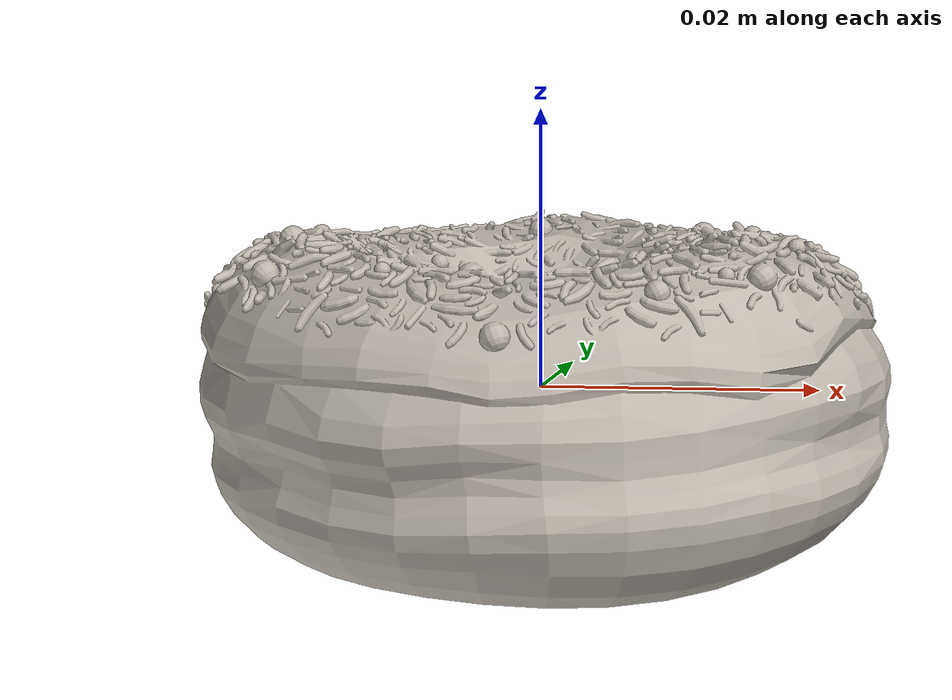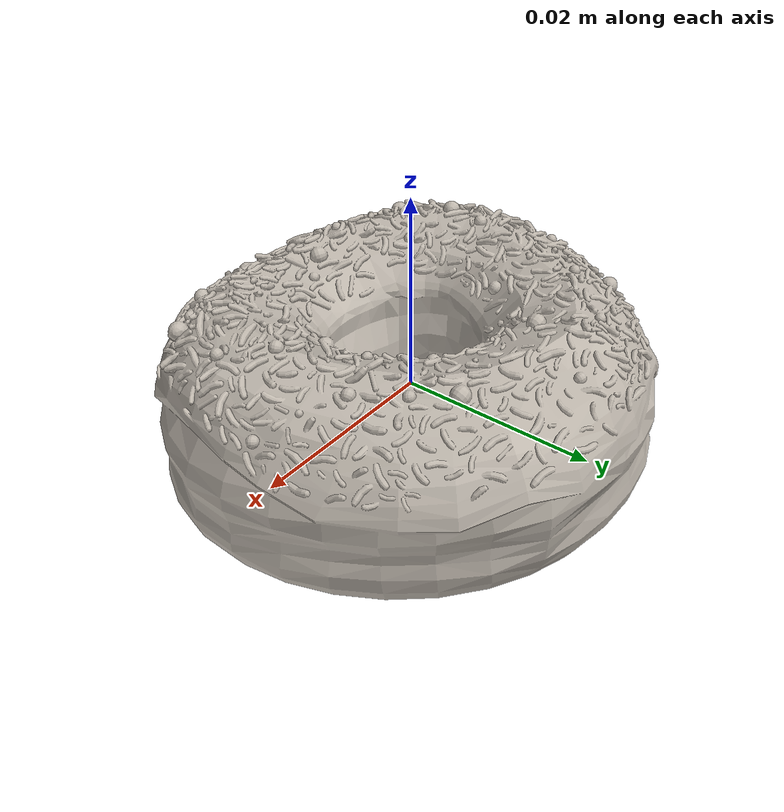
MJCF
<mujoco model="mandarin_3">
  <asset>
    <mesh file="visual/model_normalized_0.obj" name="model_normalized_0_vis" scale="0.05 0.05 0.05" refquat="1.0 0.0 0.0 0.0" />
    <mesh file="collision/model_normalized_collision_22.obj" name="model_normalized_collision_22._coll" scale="0.05 0.05 0.05" refquat="1.0 0.0 0.0 0.0" />
    <mesh file="collision/model_normalized_collision_23.obj" name="model_normalized_collision_23._coll" scale="0.05 0.05 0.05" refquat="1.0 0.0 0.0 0.0" />
    <mesh file="collision/model_normalized_collision_21.obj" name="model_normalized_collision_21._coll" scale="0.05 0.05 0.05" refquat="1.0 0.0 0.0 0.0" />
    <mesh file="collision/model_normalized_collision_20.obj" name="model_normalized_collision_20._coll" scale="0.05 0.05 0.05" refquat="1.0 0.0 0.0 0.0" />
    <mesh file="collision/model_normalized_collision_24.obj" name="model_normalized_collision_24._coll" scale="0.05 0.05 0.05" refquat="1.0 0.0 0.0 0.0" />
    <mesh file="collision/model_normalized_collision_30.obj" name="model_normalized_collision_30._coll" scale="0.05 0.05 0.05" refquat="1.0 0.0 0.0 0.0" />
    <mesh file="collision/model_normalized_collision_18.obj" name="model_normalized_collision_18._coll" scale="0.05 0.05 0.05" refquat="1.0 0.0 0.0 0.0" />
    <mesh file="collision/model_normalized_collision_19.obj" name="model_normalized_collision_19._coll" scale="0.05 0.05 0.05" refquat="1.0 0.0 0.0 0.0" />
    <mesh file="collision/model_normalized_collision_31.obj" name="model_normalized_collision_31._coll" scale="0.05 0.05 0.05" refquat="1.0 0.0 0.0 0.0" />
    <mesh file="collision/model_normalized_collision_25.obj" name="model_normalized_collision_25._coll" scale="0.05 0.05 0.05" refquat="1.0 0.0 0.0 0.0" />
    <mesh file="collision/model_normalized_collision_27.obj" name="model_normalized_collision_27._coll" scale="0.05 0.05 0.05" refquat="1.0 0.0 0.0 0.0" />
    <mesh file="collision/model_normalized_collision_26.obj" name="model_normalized_collision_26._coll" scale="0.05 0.05 0.05" refquat="1.0 0.0 0.0 0.0" />
    <mesh file="collision/model_normalized_collision_9.obj" name="model_normalized_collision_9._coll" scale="0.05 0.05 0.05" refquat="1.0 0.0 0.0 0.0" />
    <mesh file="collision/model_normalized_collision_8.obj" name="model_normalized_collision_8._coll" scale="0.05 0.05 0.05" refquat="1.0 0.0 0.0 0.0" />
    <mesh file="collision/model_normalized_collision_6.obj" name="model_normalized_collision_6._coll" scale="0.05 0.05 0.05" refquat="1.0 0.0 0.0 0.0" />
    <mesh file="collision/model_normalized_collision_7.obj" name="model_normalized_collision_7._coll" scale="0.05 0.05 0.05" refquat="1.0 0.0 0.0 0.0" />
    <mesh file="collision/model_normalized_collision_5.obj" name="model_normalized_collision_5._coll" scale="0.05 0.05 0.05" refquat="1.0 0.0 0.0 0.0" />
    <mesh file="collision/model_normalized_collision_4.obj" name="model_normalized_collision_4._coll" scale="0.05 0.05 0.05" refquat="1.0 0.0 0.0 0.0" />
    <mesh file="collision/model_normalized_collision_0.obj" name="model_normalized_collision_0._coll" scale="0.05 0.05 0.05" refquat="1.0 0.0 0.0 0.0" />
    <mesh file="collision/model_normalized_collision_1.obj" name="model_normalized_collision_1._coll" scale="0.05 0.05 0.05" refquat="1.0 0.0 0.0 0.0" />
    <mesh file="collision/model_normalized_collision_3.obj" name="model_normalized_collision_3._coll" scale="0.05 0.05 0.05" refquat="1.0 0.0 0.0 0.0" />
    <mesh file="collision/model_normalized_collision_2.obj" name="model_normalized_collision_2._coll" scale="0.05 0.05 0.05" refquat="1.0 0.0 0.0 0.0" />
    <mesh file="collision/model_normalized_collision_17.obj" name="model_normalized_collision_17._coll" scale="0.05 0.05 0.05" refquat="1.0 0.0 0.0 0.0" />
    <mesh file="collision/model_normalized_collision_16.obj" name="model_normalized_collision_16._coll" scale="0.05 0.05 0.05" refquat="1.0 0.0 0.0 0.0" />
    <mesh file="collision/model_normalized_collision_28.obj" name="model_normalized_collision_28._coll" scale="0.05 0.05 0.05" refquat="1.0 0.0 0.0 0.0" />
    <mesh file="collision/model_normalized_collision_14.obj" name="model_normalized_collision_14._coll" scale="0.05 0.05 0.05" refquat="1.0 0.0 0.0 0.0" />
    <mesh file="collision/model_normalized_collision_15.obj" name="model_normalized_collision_15._coll" scale="0.05 0.05 0.05" refquat="1.0 0.0 0.0 0.0" />
    <mesh file="collision/model_normalized_collision_29.obj" name="model_normalized_collision_29._coll" scale="0.05 0.05 0.05" refquat="1.0 0.0 0.0 0.0" />
    <mesh file="collision/model_normalized_collision_11.obj" name="model_normalized_collision_11._coll" scale="0.05 0.05 0.05" refquat="1.0 0.0 0.0 0.0" />
    <mesh file="collision/model_normalized_collision_10.obj" name="model_normalized_collision_10._coll" scale="0.05 0.05 0.05" refquat="1.0 0.0 0.0 0.0" />
    <mesh file="collision/model_normalized_collision_12.obj" name="model_normalized_collision_12._coll" scale="0.05 0.05 0.05" refquat="1.0 0.0 0.0 0.0" />
    <mesh file="collision/model_normalized_collision_13.obj" name="model_normalized_collision_13._coll" scale="0.05 0.05 0.05" refquat="1.0 0.0 0.0 0.0" />
    <texture type="2d" name="image0" file="visual/image0.png" />
    <material name="material_0.052" texture="image0" specular="0.5" shininess="0.25" />
  </asset>
  <default>
    <default class="region">
      <geom group="1" conaffinity="0" contype="0" rgba="0 1 0 0" />
    </default>
  </default>
  <worldbody>
    <body>
      <body name="object">
        <geom solimp="0.998 0.998 0.001" solref="0.001 1" density="100" friction="0.95 0.3 0.1" type="mesh" mesh="model_normalized_0_vis" conaffinity="0" contype="0" group="1" material="material_0.052" />
        <geom solimp="0.998 0.998 0.001" solref="0.001 1" density="100" friction="0.95 0.3 0.1" type="mesh" mesh="model_normalized_collision_22._coll" group="0" rgba="0.8 0.8 0.8 0.0" />
        <geom solimp="0.998 0.998 0.001" solref="0.001 1" density="100" friction="0.95 0.3 0.1" type="mesh" mesh="model_normalized_collision_23._coll" group="0" rgba="0.8 0.8 0.8 0.0" />
        <geom solimp="0.998 0.998 0.001" solref="0.001 1" density="100" friction="0.95 0.3 0.1" type="mesh" mesh="model_normalized_collision_21._coll" group="0" rgba="0.8 0.8 0.8 0.0" />
        <geom solimp="0.998 0.998 0.001" solref="0.001 1" density="100" friction="0.95 0.3 0.1" type="mesh" mesh="model_normalized_collision_20._coll" group="0" rgba="0.8 0.8 0.8 0.0" />
        <geom solimp="0.998 0.998 0.001" solref="0.001 1" density="100" friction="0.95 0.3 0.1" type="mesh" mesh="model_normalized_collision_24._coll" group="0" rgba="0.8 0.8 0.8 0.0" />
        <geom solimp="0.998 0.998 0.001" solref="0.001 1" density="100" friction="0.95 0.3 0.1" type="mesh" mesh="model_normalized_collision_30._coll" group="0" rgba="0.8 0.8 0.8 0.0" />
        <geom solimp="0.998 0.998 0.001" solref="0.001 1" density="100" friction="0.95 0.3 0.1" type="mesh" mesh="model_normalized_collision_18._coll" group="0" rgba="0.8 0.8 0.8 0.0" />
        <geom solimp="0.998 0.998 0.001" solref="0.001 1" density="100" friction="0.95 0.3 0.1" type="mesh" mesh="model_normalized_collision_19._coll" group="0" rgba="0.8 0.8 0.8 0.0" />
        <geom solimp="0.998 0.998 0.001" solref="0.001 1" density="100" friction="0.95 0.3 0.1" type="mesh" mesh="model_normalized_collision_31._coll" group="0" rgba="0.8 0.8 0.8 0.0" />
        <geom solimp="0.998 0.998 0.001" solref="0.001 1" density="100" friction="0.95 0.3 0.1" type="mesh" mesh="model_normalized_collision_25._coll" group="0" rgba="0.8 0.8 0.8 0.0" />
        <geom solimp="0.998 0.998 0.001" solref="0.001 1" density="100" friction="0.95 0.3 0.1" type="mesh" mesh="model_normalized_collision_27._coll" group="0" rgba="0.8 0.8 0.8 0.0" />
        <geom solimp="0.998 0.998 0.001" solref="0.001 1" density="100" friction="0.95 0.3 0.1" type="mesh" mesh="model_normalized_collision_26._coll" group="0" rgba="0.8 0.8 0.8 0.0" />
        <geom solimp="0.998 0.998 0.001" solref="0.001 1" density="100" friction="0.95 0.3 0.1" type="mesh" mesh="model_normalized_collision_9._coll" group="0" rgba="0.8 0.8 0.8 0.0" />
        <geom solimp="0.998 0.998 0.001" solref="0.001 1" density="100" friction="0.95 0.3 0.1" type="mesh" mesh="model_normalized_collision_8._coll" group="0" rgba="0.8 0.8 0.8 0.0" />
        <geom solimp="0.998 0.998 0.001" solref="0.001 1" density="100" friction="0.95 0.3 0.1" type="mesh" mesh="model_normalized_collision_6._coll" group="0" rgba="0.8 0.8 0.8 0.0" />
        <geom solimp="0.998 0.998 0.001" solref="0.001 1" density="100" friction="0.95 0.3 0.1" type="mesh" mesh="model_normalized_collision_7._coll" group="0" rgba="0.8 0.8 0.8 0.0" />
        <geom solimp="0.998 0.998 0.001" solref="0.001 1" density="100" friction="0.95 0.3 0.1" type="mesh" mesh="model_normalized_collision_5._coll" group="0" rgba="0.8 0.8 0.8 0.0" />
        <geom solimp="0.998 0.998 0.001" solref="0.001 1" density="100" friction="0.95 0.3 0.1" type="mesh" mesh="model_normalized_collision_4._coll" group="0" rgba="0.8 0.8 0.8 0.0" />
        <geom solimp="0.998 0.998 0.001" solref="0.001 1" density="100" friction="0.95 0.3 0.1" type="mesh" mesh="model_normalized_collision_0._coll" group="0" rgba="0.8 0.8 0.8 0.0" />
        <geom solimp="0.998 0.998 0.001" solref="0.001 1" density="100" friction="0.95 0.3 0.1" type="mesh" mesh="model_normalized_collision_1._coll" group="0" rgba="0.8 0.8 0.8 0.0" />
        <geom solimp="0.998 0.998 0.001" solref="0.001 1" density="100" friction="0.95 0.3 0.1" type="mesh" mesh="model_normalized_collision_3._coll" group="0" rgba="0.8 0.8 0.8 0.0" />
        <geom solimp="0.998 0.998 0.001" solref="0.001 1" density="100" friction="0.95 0.3 0.1" type="mesh" mesh="model_normalized_collision_2._coll" group="0" rgba="0.8 0.8 0.8 0.0" />
        <geom solimp="0.998 0.998 0.001" solref="0.001 1" density="100" friction="0.95 0.3 0.1" type="mesh" mesh="model_normalized_collision_17._coll" group="0" rgba="0.8 0.8 0.8 0.0" />
        <geom solimp="0.998 0.998 0.001" solref="0.001 1" density="100" friction="0.95 0.3 0.1" type="mesh" mesh="model_normalized_collision_16._coll" group="0" rgba="0.8 0.8 0.8 0.0" />
        <geom solimp="0.998 0.998 0.001" solref="0.001 1" density="100" friction="0.95 0.3 0.1" type="mesh" mesh="model_normalized_collision_28._coll" group="0" rgba="0.8 0.8 0.8 0.0" />
        <geom solimp="0.998 0.998 0.001" solref="0.001 1" density="100" friction="0.95 0.3 0.1" type="mesh" mesh="model_normalized_collision_14._coll" group="0" rgba="0.8 0.8 0.8 0.0" />
        <geom solimp="0.998 0.998 0.001" solref="0.001 1" density="100" friction="0.95 0.3 0.1" type="mesh" mesh="model_normalized_collision_15._coll" group="0" rgba="0.8 0.8 0.8 0.0" />
        <geom solimp="0.998 0.998 0.001" solref="0.001 1" density="100" friction="0.95 0.3 0.1" type="mesh" mesh="model_normalized_collision_29._coll" group="0" rgba="0.8 0.8 0.8 0.0" />
        <geom solimp="0.998 0.998 0.001" solref="0.001 1" density="100" friction="0.95 0.3 0.1" type="mesh" mesh="model_normalized_collision_11._coll" group="0" rgba="0.8 0.8 0.8 0.0" />
        <geom solimp="0.998 0.998 0.001" solref="0.001 1" density="100" friction="0.95 0.3 0.1" type="mesh" mesh="model_normalized_collision_10._coll" group="0" rgba="0.8 0.8 0.8 0.0" />
        <geom solimp="0.998 0.998 0.001" solref="0.001 1" density="100" friction="0.95 0.3 0.1" type="mesh" mesh="model_normalized_collision_12._coll" group="0" rgba="0.8 0.8 0.8 0.0" />
        <geom solimp="0.998 0.998 0.001" solref="0.001 1" density="100" friction="0.95 0.3 0.1" type="mesh" mesh="model_normalized_collision_13._coll" group="0" rgba="0.8 0.8 0.8 0.0" />
        <geom class="region" name="reg_bbox" type="box" pos="-0.00000 0.00005 -0.00000" size="0.02455 0.02417 0.01977" />
      </body>
    </body>
  </worldbody>
</mujoco>
